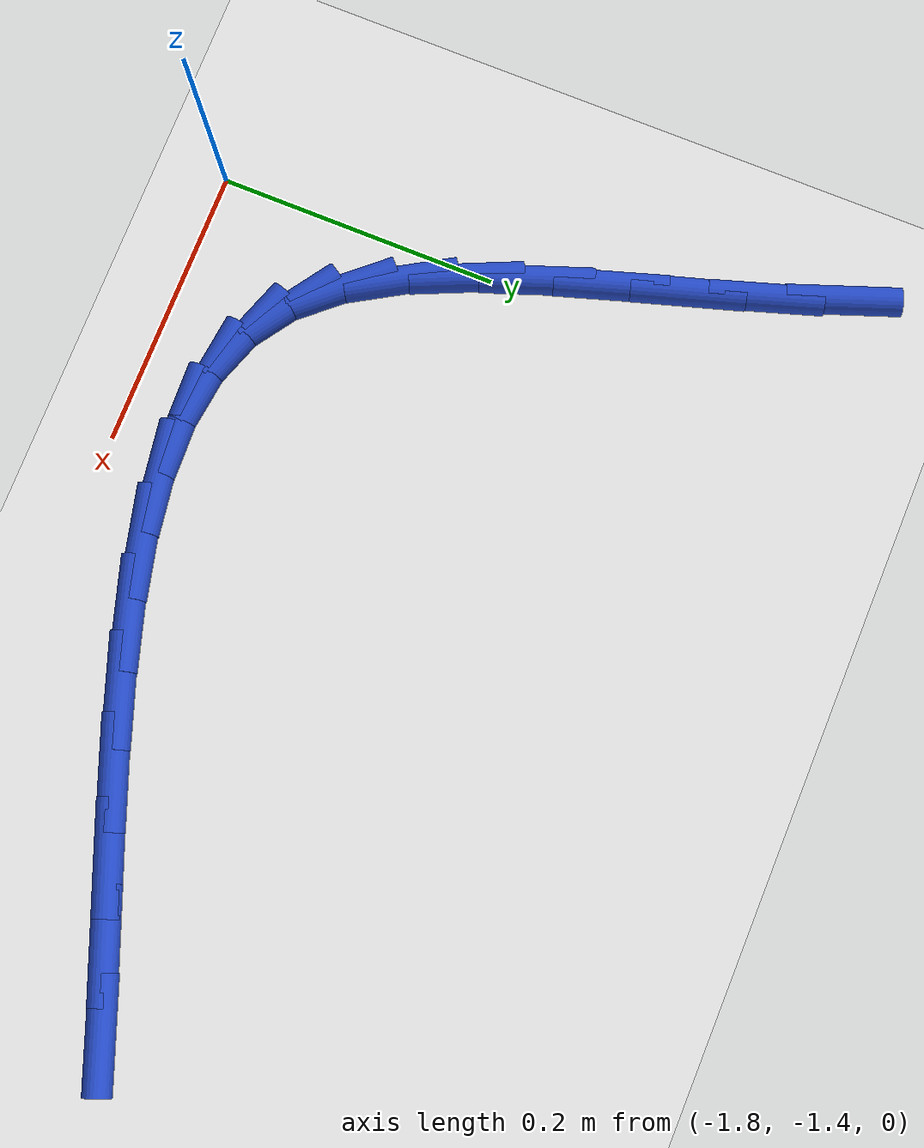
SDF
<sdf version="1.6">
 <world name="default">
  <model name="ground_plane">
   <static>1</static>
   <link name="link">
    <collision name="collision">
     <geometry><plane><normal>0 0 1</normal><size>100 100</size></plane></geometry>
     <surface><friction><ode><mu>100</mu><mu2>50</mu2></ode></friction></surface>
    </collision>
    <visual name="visual">
     <cast_shadows>0</cast_shadows>
     <geometry><plane><normal>0 0 1</normal><size>100 100</size></plane></geometry>
     <material>
      <script><uri>file://media/materials/scripts/gazebo.material</uri><name>Gazebo/WhiteGlow</name></script>
     </material>
    </visual>
   </link>
  </model>
  <model name="line">
   <link name="link_102">
    <pose>-1.8749853782599712 -0.9685485005911767 0.01 0 1.57 -1.2279173739330727</pose>
    <collision name="collision">
     <geometry><cylinder><radius>0.01</radius><length>0.08</length></cylinder></geometry>
    </collision>
    <visual name="visual">
     <material>
      <script><name>Gazebo/Blue</name><uri>file://media/materials/scripts/gazebo.material</uri></script>
     </material>
     <geometry><cylinder><radius>0.01</radius><length>0.08</length></cylinder></geometry>
    </visual>
   </link>
   <link name="link_103">
    <pose>-1.8569922227921405 -1.0189524069150928 0.01 0 1.57 -1.2649393567182294</pose>
    <collision name="collision">
     <geometry><cylinder><radius>0.01</radius><length>0.08</length></cylinder></geometry>
    </collision>
    <visual name="visual">
     <material>
      <script><name>Gazebo/Blue</name><uri>file://media/materials/scripts/gazebo.material</uri></script>
     </material>
     <geometry><cylinder><radius>0.01</radius><length>0.08</length></cylinder></geometry>
    </visual>
   </link>
   <link name="link_104">
    <pose>-1.8408205132910123 -1.0701667264457126 0.01 0 1.57 -1.2779755489734388</pose>
    <collision name="collision">
     <geometry><cylinder><radius>0.01</radius><length>0.08</length></cylinder></geometry>
    </collision>
    <visual name="visual">
     <material>
      <script><name>Gazebo/Blue</name><uri>file://media/materials/scripts/gazebo.material</uri></script>
     </material>
     <geometry><cylinder><radius>0.01</radius><length>0.08</length></cylinder></geometry>
    </visual>
   </link>
   <link name="link_105">
    <pose>-1.8255311128241298 -1.1208799666420695 0.01 0 1.57 -1.2667052411329207</pose>
    <collision name="collision">
     <geometry><cylinder><radius>0.01</radius><length>0.08</length></cylinder></geometry>
    </collision>
    <visual name="visual">
     <material>
      <script><name>Gazebo/Blue</name><uri>file://media/materials/scripts/gazebo.material</uri></script>
     </material>
     <geometry><cylinder><radius>0.01</radius><length>0.08</length></cylinder></geometry>
    </visual>
   </link>
   <link name="link_106">
    <pose>-1.810184884459032 -1.1697806349631985 0.01 0 1.57 -1.227900142949787</pose>
    <collision name="collision">
     <geometry><cylinder><radius>0.01</radius><length>0.08</length></cylinder></geometry>
    </collision>
    <visual name="visual">
     <material>
      <script><name>Gazebo/Blue</name><uri>file://media/materials/scripts/gazebo.material</uri></script>
     </material>
     <geometry><cylinder><radius>0.01</radius><length>0.08</length></cylinder></geometry>
    </visual>
   </link>
   <link name="link_107">
    <pose>-1.7938426912632632 -1.2155572388681322 0.01 0 1.57 -1.1545229716210017</pose>
    <collision name="collision">
     <geometry><cylinder><radius>0.01</radius><length>0.08</length></cylinder></geometry>
    </collision>
    <visual name="visual">
     <material>
      <script><name>Gazebo/Blue</name><uri>file://media/materials/scripts/gazebo.material</uri></script>
     </material>
     <geometry><cylinder><radius>0.01</radius><length>0.08</length></cylinder></geometry>
    </visual>
   </link>
   <link name="link_108">
    <pose>-1.7755653963043627 -1.2568982858159043 0.01 0 1.57 -1.0346196335127702</pose>
    <collision name="collision">
     <geometry><cylinder><radius>0.01</radius><length>0.08</length></cylinder></geometry>
    </collision>
    <visual name="visual">
     <material>
      <script><name>Gazebo/Blue</name><uri>file://media/materials/scripts/gazebo.material</uri></script>
     </material>
     <geometry><cylinder><radius>0.01</radius><length>0.08</length></cylinder></geometry>
    </visual>
   </link>
   <link name="link_109">
    <pose>-1.7544138626498724 -1.2924922832655494 0.01 0 1.57 -0.8520380663465443</pose>
    <collision name="collision">
     <geometry><cylinder><radius>0.01</radius><length>0.08</length></cylinder></geometry>
    </collision>
    <visual name="visual">
     <material>
      <script><name>Gazebo/Blue</name><uri>file://media/materials/scripts/gazebo.material</uri></script>
     </material>
     <geometry><cylinder><radius>0.01</radius><length>0.08</length></cylinder></geometry>
    </visual>
   </link>
   <link name="link_110">
    <pose>-1.729448953367334 -1.3210277386761018 0.01 0 1.57 -0.6001549843722215</pose>
    <collision name="collision">
     <geometry><cylinder><radius>0.01</radius><length>0.08</length></cylinder></geometry>
    </collision>
    <visual name="visual">
     <material>
      <script><name>Gazebo/Blue</name><uri>file://media/materials/scripts/gazebo.material</uri></script>
     </material>
     <geometry><cylinder><radius>0.01</radius><length>0.08</length></cylinder></geometry>
    </visual>
   </link>
   <link name="link_111">
    <pose>-1.6998093670356613 -1.3413120150946047 0.01 0 1.57 -0.33982393546508627</pose>
    <collision name="collision">
     <geometry><cylinder><radius>0.01</radius><length>0.08</length></cylinder></geometry>
    </collision>
    <visual name="visual">
     <material>
      <script><name>Gazebo/Blue</name><uri>file://media/materials/scripts/gazebo.material</uri></script>
     </material>
     <geometry><cylinder><radius>0.01</radius><length>0.08</length></cylinder></geometry>
    </visual>
   </link>
   <link name="link_112">
    <pose>-1.6654822069645108 -1.353447997899273 0.01 0 1.57 -0.12624613363004167</pose>
    <collision name="collision">
     <geometry><cylinder><radius>0.01</radius><length>0.08</length></cylinder></geometry>
    </collision>
    <visual name="visual">
     <material>
      <script><name>Gazebo/Blue</name><uri>file://media/materials/scripts/gazebo.material</uri></script>
     </material>
     <geometry><cylinder><radius>0.01</radius><length>0.08</length></cylinder></geometry>
    </visual>
   </link>
   <link name="link_113">
    <pose>-1.6269762771856753 -1.3583352145793681 0.01 0 1.57 0.03438193599201631</pose>
    <collision name="collision">
     <geometry><cylinder><radius>0.01</radius><length>0.08</length></cylinder></geometry>
    </collision>
    <visual name="visual">
     <material>
      <script><name>Gazebo/Blue</name><uri>file://media/materials/scripts/gazebo.material</uri></script>
     </material>
     <geometry><cylinder><radius>0.01</radius><length>0.08</length></cylinder></geometry>
    </visual>
   </link>
   <link name="link_114">
    <pose>-1.5848079934462564 -1.3568848157879594 0.01 0 1.57 0.1506102830379154</pose>
    <collision name="collision">
     <geometry><cylinder><radius>0.01</radius><length>0.08</length></cylinder></geometry>
    </collision>
    <visual name="visual">
     <material>
      <script><name>Gazebo/Blue</name><uri>file://media/materials/scripts/gazebo.material</uri></script>
     </material>
     <geometry><cylinder><radius>0.01</radius><length>0.08</length></cylinder></geometry>
    </visual>
   </link>
   <link name="link_115">
    <pose>-1.5394937714933579 -1.3500079521781168 0.01 0 1.57 0.23328914995928662</pose>
    <collision name="collision">
     <geometry><cylinder><radius>0.01</radius><length>0.08</length></cylinder></geometry>
    </collision>
    <visual name="visual">
     <material>
      <script><name>Gazebo/Blue</name><uri>file://media/materials/scripts/gazebo.material</uri></script>
     </material>
     <geometry><cylinder><radius>0.01</radius><length>0.08</length></cylinder></geometry>
    </visual>
   </link>
   <link name="link_116">
    <pose>-1.4915500270740807 -1.3386157744029101 0.01 0 1.57 0.2910771085285276</pose>
    <collision name="collision">
     <geometry><cylinder><radius>0.01</radius><length>0.08</length></cylinder></geometry>
    </collision>
    <visual name="visual">
     <material>
      <script><name>Gazebo/Blue</name><uri>file://media/materials/scripts/gazebo.material</uri></script>
     </material>
     <geometry><cylinder><radius>0.01</radius><length>0.08</length></cylinder></geometry>
    </visual>
   </link>
   <link name="link_117">
    <pose>-1.4414931759355296 -1.3236194331154092 0.01 0 1.57 0.32994336552140785</pose>
    <collision name="collision">
     <geometry><cylinder><radius>0.01</radius><length>0.08</length></cylinder></geometry>
    </collision>
    <visual name="visual">
     <material>
      <script><name>Gazebo/Blue</name><uri>file://media/materials/scripts/gazebo.material</uri></script>
     </material>
     <geometry><cylinder><radius>0.01</radius><length>0.08</length></cylinder></geometry>
    </visual>
   </link>
   <link name="link_118">
    <pose>-1.3898396338248058 -1.3059300789686845 0.01 0 1.57 0.3537076253738808</pose>
    <collision name="collision">
     <geometry><cylinder><radius>0.01</radius><length>0.08</length></cylinder></geometry>
    </collision>
    <visual name="visual">
     <material>
      <script><name>Gazebo/Blue</name><uri>file://media/materials/scripts/gazebo.material</uri></script>
     </material>
     <geometry><cylinder><radius>0.01</radius><length>0.08</length></cylinder></geometry>
    </visual>
   </link>
   <link name="link_119">
    <pose>-1.3371058164890126 -1.2864588626158058 0.01 0 1.57 0.3646022636401724</pose>
    <collision name="collision">
     <geometry><cylinder><radius>0.01</radius><length>0.08</length></cylinder></geometry>
    </collision>
    <visual name="visual">
     <material>
      <script><name>Gazebo/Blue</name><uri>file://media/materials/scripts/gazebo.material</uri></script>
     </material>
     <geometry><cylinder><radius>0.01</radius><length>0.08</length></cylinder></geometry>
    </visual>
   </link>
   <link name="link_120">
    <pose>-1.2838081396752519 -1.266116934709842 0.01 0 1.57 0.36364394988095494</pose>
    <collision name="collision">
     <geometry><cylinder><radius>0.01</radius><length>0.08</length></cylinder></geometry>
    </collision>
    <visual name="visual">
     <material>
      <script><name>Gazebo/Blue</name><uri>file://media/materials/scripts/gazebo.material</uri></script>
     </material>
     <geometry><cylinder><radius>0.01</radius><length>0.08</length></cylinder></geometry>
    </visual>
   </link>
   <link name="link_121">
    <pose>-1.2304630191306256 -1.2458154459038633 0.01 0 1.57 0.350810787594498</pose>
    <collision name="collision">
     <geometry><cylinder><radius>0.01</radius><length>0.08</length></cylinder></geometry>
    </collision>
    <visual name="visual">
     <material>
      <script><name>Gazebo/Blue</name><uri>file://media/materials/scripts/gazebo.material</uri></script>
     </material>
     <geometry><cylinder><radius>0.01</radius><length>0.08</length></cylinder></geometry>
    </visual>
   </link>
  </model>
 </world>
</sdf>
